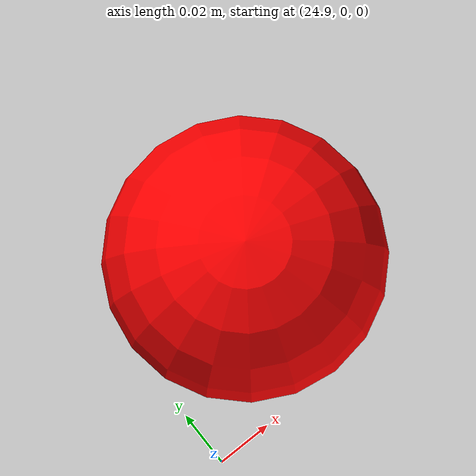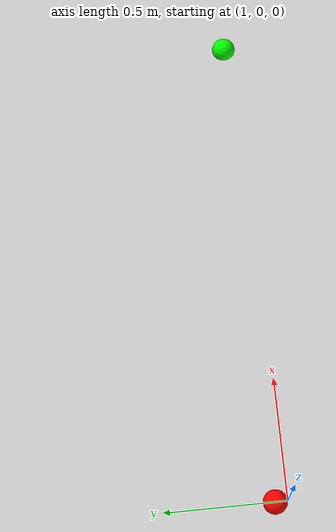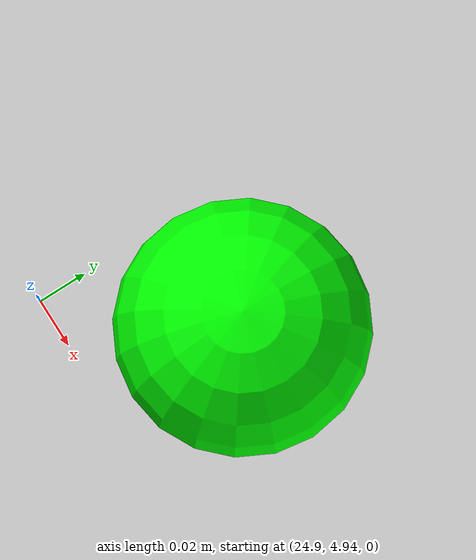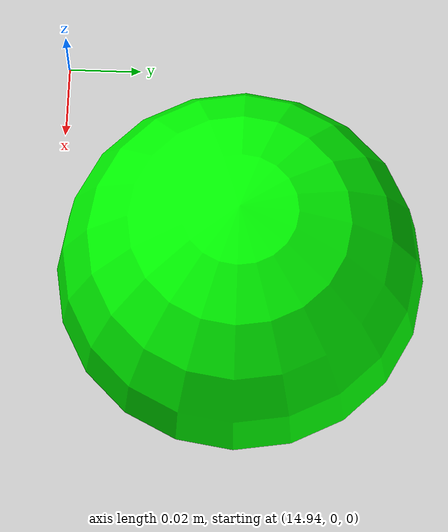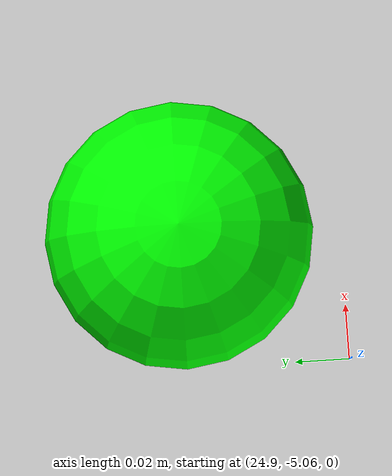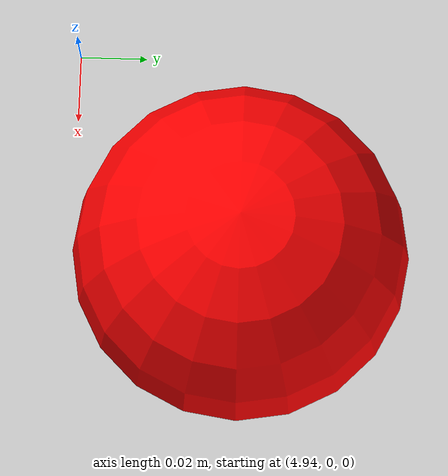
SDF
<sdf version="1.6">
 <world name="default">
  <model name="ground_plane">
   <static>1</static>
   <link name="link">
    <collision name="collision">
     <geometry><plane><normal>0 0 1</normal><size>100 100</size></plane></geometry>
     <surface><friction><ode><mu>100</mu><mu2>50</mu2></ode></friction></surface>
    </collision>
    <visual name="visual">
     <cast_shadows>0</cast_shadows>
     <geometry><plane><normal>0 0 1</normal><size>100 100</size></plane></geometry>
     <material>
      <script><uri>file://media/materials/scripts/gazebo.material</uri><name>Gazebo/Grey</name></script>
     </material>
    </visual>
   </link>
  </model>
  <light name="sun" type="directional">
   <pose>0 0 10 0 -0 0</pose>
   <diffuse>0.8 0.8 0.8 1</diffuse>
   <specular>0.1 0.1 0.1 1</specular>
   <attenuation>
    <range>1000</range>
    <constant>0.9</constant>
    <linear>0.01</linear>
    <quadratic>0.001</quadratic>
   </attenuation>
   <direction>-0.5 0.5 -1</direction>
  </light>
  <gravity>0 0 -9.8</gravity>
  <magnetic_field>6e-06 2.3e-05 -4.2e-05</magnetic_field>
  <atmosphere type="adiabatic"/>
  <physics name="default_physics" default="0" type="ode">
   <max_step_size>0.001</max_step_size>
   <real_time_factor>1</real_time_factor>
   <real_time_update_rate>1000</real_time_update_rate>
  </physics>
  <scene><ambient>0.4 0.4 0.4 1</ambient><background>0.7 0.7 0.7 1</background><shadows>1</shadows></scene>
  <spherical_coordinates>
   <surface_model>EARTH_WGS84</surface_model>
   <latitude_deg>0</latitude_deg>
   <longitude_deg>0</longitude_deg>
   <elevation>0</elevation>
   <heading_deg>0</heading_deg>
  </spherical_coordinates>
  <model name="sphere1">
   <pose>1 0.05 0 0 0 0</pose>
   <link name="link1">
    <inertial>
     <mass>0.25</mass>
     <inertia><ixx>0.00169</ixx><iyy>0.00169</iyy><izz>0.00169</izz><ixy>0</ixy><ixz>0</ixz><iyz>0</iyz></inertia>
    </inertial>
    <collision name="body_collision1">
     <geometry><sphere><radius>0.05</radius></sphere></geometry>
     <surface>
      <bounce><restitution_coefficient>0.6</restitution_coefficient><threshold>0</threshold></bounce>
      <contact><ode><max_vel>10</max_vel></ode></contact>
     </surface>
    </collision>
    <visual name="v1">
     <material>
      <ambient>1 0 0 1.0</ambient>
      <diffuse>1 0 0 1.0</diffuse>
      <specular>1 0 0 1.0</specular>
      <emissive>1 0 0 1.0</emissive>
     </material>
     <geometry><sphere><radius>0.05</radius></sphere></geometry>
    </visual>
   </link>
  </model>
  <model name="sphere2">
   <pose>3 0.05 0 0 0 0</pose>
   <link name="link2">
    <inertial>
     <mass>0.25</mass>
     <inertia><ixx>0.00169</ixx><iyy>0.00169</iyy><izz>0.00169</izz><ixy>0</ixy><ixz>0</ixz><iyz>0</iyz></inertia>
    </inertial>
    <collision name="body_collision2">
     <geometry><sphere><radius>0.05</radius></sphere></geometry>
     <surface>
      <bounce><restitution_coefficient>0.6</restitution_coefficient><threshold>0</threshold></bounce>
      <contact><ode><max_vel>10</max_vel></ode></contact>
     </surface>
    </collision>
    <visual name="v2">
     <material>
      <ambient>0 1 0 1.0</ambient>
      <diffuse>0 1 0 1.0</diffuse>
      <specular>0 1 0 1.0</specular>
      <emissive>0 1 0 1.0</emissive>
     </material>
     <geometry><sphere><radius>0.05</radius></sphere></geometry>
    </visual>
   </link>
  </model>
  <model name="sphere3">
   <pose>15 0.05 0 0 0 0</pose>
   <link name="link3">
    <inertial>
     <mass>0.25</mass>
     <inertia><ixx>0.00169</ixx><iyy>0.00169</iyy><izz>0.00169</izz><ixy>0</ixy><ixz>0</ixz><iyz>0</iyz></inertia>
    </inertial>
    <collision name="body_collision3">
     <geometry><sphere><radius>0.05</radius></sphere></geometry>
     <surface>
      <bounce><restitution_coefficient>0.6</restitution_coefficient><threshold>0</threshold></bounce>
      <contact><ode><max_vel>10</max_vel></ode></contact>
     </surface>
    </collision>
    <visual name="v3">
     <material>
      <ambient>0 1 0 1.0</ambient>
      <diffuse>0 1 0 1.0</diffuse>
      <specular>0 1 0 1.0</specular>
      <emissive>0 1 0 1.0</emissive>
     </material>
     <geometry><sphere><radius>0.05</radius></sphere></geometry>
    </visual>
   </link>
  </model>
  <model name="sphere4">
   <pose>5 0.05 0 0 0 0</pose>
   <link name="link4">
    <inertial>
     <mass>0.25</mass>
     <inertia><ixx>0.00169</ixx><iyy>0.00169</iyy><izz>0.00169</izz><ixy>0</ixy><ixz>0</ixz><iyz>0</iyz></inertia>
    </inertial>
    <collision name="body_collision4">
     <geometry><sphere><radius>0.05</radius></sphere></geometry>
     <surface>
      <bounce><restitution_coefficient>0.6</restitution_coefficient><threshold>0</threshold></bounce>
      <contact><ode><max_vel>10</max_vel></ode></contact>
     </surface>
    </collision>
    <visual name="v4">
     <material>
      <ambient>1 0 0 1.0</ambient>
      <diffuse>1 0 0 1.0</diffuse>
      <specular>1 0 0 1.0</specular>
      <emissive>1 0 0 1.0</emissive>
     </material>
     <geometry><sphere><radius>0.05</radius></sphere></geometry>
    </visual>
   </link>
  </model>
  <model name="sphere5">
   <pose>24.95 0.05 0 0 0 0</pose>
   <link name="link5">
    <inertial>
     <mass>0.25</mass>
     <inertia><ixx>0.00169</ixx><iyy>0.00169</iyy><izz>0.00169</izz><ixy>0</ixy><ixz>0</ixz><iyz>0</iyz></inertia>
    </inertial>
    <collision name="body_collision5">
     <geometry><sphere><radius>0.05</radius></sphere></geometry>
     <surface>
      <bounce><restitution_coefficient>0.9</restitution_coefficient><threshold>0</threshold></bounce>
      <contact><ode><max_vel>10</max_vel></ode></contact>
     </surface>
    </collision>
    <visual name="v5">
     <material>
      <ambient>1 0 0 1.0</ambient>
      <diffuse>1 0 0 1.0</diffuse>
      <specular>1 0 0 1.0</specular>
      <emissive>1 0 0 1.0</emissive>
     </material>
     <geometry><sphere><radius>0.05</radius></sphere></geometry>
    </visual>
   </link>
  </model>
  <model name="sphere6">
   <pose>24.95 5 0 0 0 0</pose>
   <link name="link6">
    <inertial>
     <mass>0.25</mass>
     <inertia><ixx>0.00169</ixx><iyy>0.00169</iyy><izz>0.00169</izz><ixy>0</ixy><ixz>0</ixz><iyz>0</iyz></inertia>
    </inertial>
    <collision name="body_collision6">
     <geometry><sphere><radius>0.05</radius></sphere></geometry>
     <surface>
      <bounce><restitution_coefficient>0.75</restitution_coefficient><threshold>0</threshold></bounce>
      <contact><ode><max_vel>10</max_vel></ode></contact>
     </surface>
    </collision>
    <visual name="v6">
     <material>
      <ambient>0 1 0 1.0</ambient>
      <diffuse>0 1 0 1.0</diffuse>
      <specular>0 1 0 1.0</specular>
      <emissive>0 1 0 1.0</emissive>
     </material>
     <geometry><sphere><radius>0.05</radius></sphere></geometry>
    </visual>
   </link>
  </model>
  <model name="sphere7">
   <pose>24.95 -5 0 0 0 0</pose>
   <link name="link7">
    <inertial>
     <mass>0.25</mass>
     <inertia><ixx>0.00169</ixx><iyy>0.00169</iyy><izz>0.00169</izz><ixy>0</ixy><ixz>0</ixz><iyz>0</iyz></inertia>
    </inertial>
    <collision name="body_collision7">
     <geometry><sphere><radius>0.05</radius></sphere></geometry>
     <surface>
      <bounce><restitution_coefficient>1.0</restitution_coefficient><threshold>0</threshold></bounce>
      <contact><ode><max_vel>10</max_vel></ode></contact>
     </surface>
    </collision>
    <visual name="v7">
     <material>
      <ambient>0 1 0 1.0</ambient>
      <diffuse>0 1 0 1.0</diffuse>
      <specular>0 1 0 1.0</specular>
      <emissive>0 1 0 1.0</emissive>
     </material>
     <geometry><sphere><radius>0.05</radius></sphere></geometry>
    </visual>
   </link>
  </model>
 </world>
</sdf>
